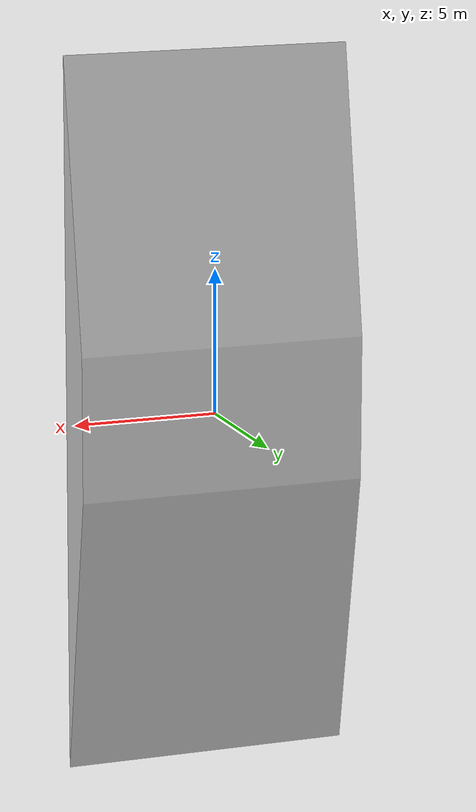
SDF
<?xml version="1.0" ?>
<sdf version="1.5">
  <model name="hill">
    <static>true</static> <!-- 정적 모델로 설정 -->
    <link name="link">

      <!-- 충돌 형상 (collision) 설정 -->
      <collision name="collision">
        <geometry>
          <mesh>
            <uri>model://hill/hill.dae</uri> <!-- STL 파일의 경로 (모델 폴더 내 경로) -->
            <scale>2 1 1</scale> <!-- 모델의 크기 조정 -->
          </mesh>
        </geometry>
        <surface>
          <contact>
            <collide_bitmask>0xffff</collide_bitmask> <!-- 충돌 마스크 -->
          </contact>
          <friction>
            <ode>
              <mu>100</mu>
              <mu2>50</mu2>
            </ode>
          </friction>
        </surface>
      </collision>

      <!-- 시각적 요소 (visual) 설정 -->
      <visual name="visual">
        <cast_shadows>true</cast_shadows> <!-- 그림자 생성 여부 -->
        <geometry>
          <mesh>
            <uri>model://hill/hill.dae</uri> <!-- STL 파일의 경로 -->
            <scale>2 1 1</scale> <!-- 시각적 크기 조정 -->
          </mesh>
        </geometry>
        <material>
          <script>
              <uri> ./course.material </uri>  <!-- file://course.material -->
              <name>line</name>
          </script>
        </material>
      </visual>
    </link>
  </model>
</sdf>
